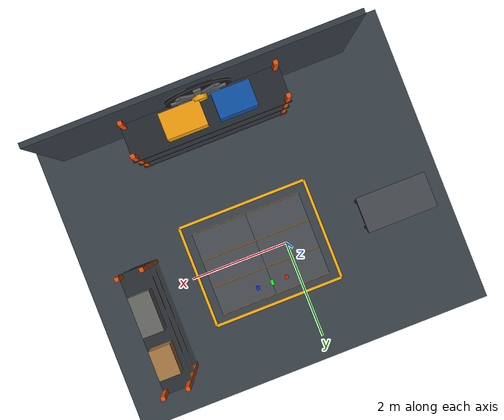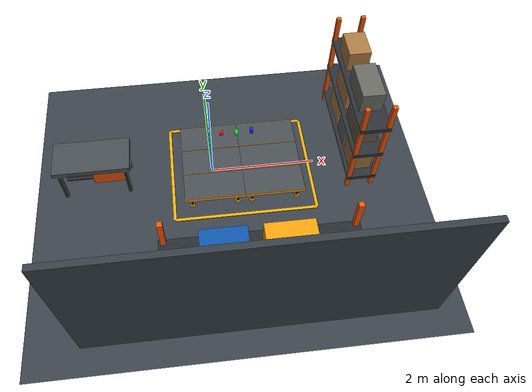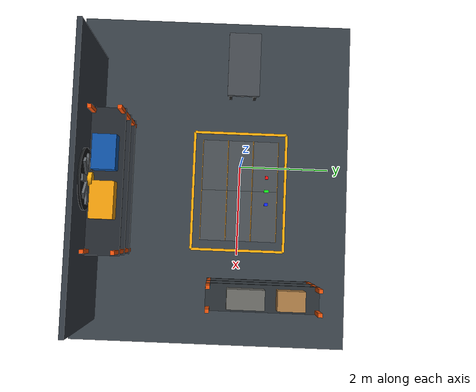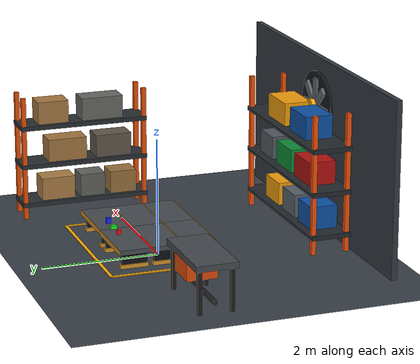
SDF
<sdf version="1.9">
 <world name="pick_and_place_world">
  <gravity>0 0 -9.8</gravity>
  <magnetic_field>6e-06 2.3e-05 -4.2e-05</magnetic_field>
  <atmosphere type="adiabatic"/>
  <physics type="ode">
   <max_step_size>0.001</max_step_size>
   <real_time_factor>1</real_time_factor>
   <real_time_update_rate>1000</real_time_update_rate>
  </physics>
  <scene>
   <ambient>0.45 0.45 0.45 1</ambient>
   <background>0.12 0.15 0.18 1</background>
   <shadows>true</shadows>
  </scene>
  <model name="red_box">
   <pose>0.25 0.6 0.39 0 0 0</pose>
   <static>false</static>
   <link name="red_link">
    <inertial>
     <mass>0.10</mass>
     <inertia><ixx>0.000089</ixx><iyy>0.000089</iyy><izz>0.000070</izz></inertia>
    </inertial>
    <collision name="red_collision"><geometry><box><size>0.065 0.065 0.08</size></box></geometry></collision>
    <visual name="red_visual">
     <geometry><box><size>0.065 0.065 0.08</size></box></geometry>
     <material><ambient>1 0.05 0.05 1</ambient><diffuse>1 0.05 0.05 1</diffuse></material>
    </visual>
   </link>
  </model>
  <model name="green_box">
   <pose>0.55 0.6 0.38 0 0 1.5708</pose>
   <static>false</static>
   <link name="green_link">
    <inertial>
     <mass>0.12</mass>
     <inertia><ixx>0.00007</ixx><iyy>0.00012</iyy><izz>0.00013</izz></inertia>
    </inertial>
    <collision name="green_collision"><geometry><box><size>0.10 0.06 0.06</size></box></geometry></collision>
    <visual name="green_visual">
     <geometry><box><size>0.10 0.06 0.06</size></box></geometry>
     <material><ambient>0.05 1 0.10 1</ambient><diffuse>0.05 1 0.10 1</diffuse></material>
    </visual>
   </link>
  </model>
  <model name="blue_box">
   <pose>0.85 0.6 0.40 0 0 0</pose>
   <static>false</static>
   <link name="blue_link">
    <inertial>
     <mass>0.08</mass>
     <inertia><ixx>0.00011</ixx><iyy>0.00009</iyy><izz>0.00007</izz></inertia>
    </inertial>
    <collision name="blue_collision"><geometry><box><size>0.06 0.08 0.10</size></box></geometry></collision>
    <visual name="blue_visual">
     <geometry><box><size>0.06 0.08 0.10</size></box></geometry>
     <material><ambient>0.05 0.15 1 1</ambient><diffuse>0.05 0.15 1 1</diffuse></material>
    </visual>
   </link>
  </model>
  <include><uri>model://fancy_table</uri><name>fancy_table_5</name><pose>0 -0.56 0 0 0 0</pose></include>
  <include><uri>model://fancy_table</uri><name>fancy_table_6</name><pose>1.12 -0.56 0 0 0 0</pose></include>
  <include><uri>model://fancy_table</uri><name>fancy_table_1</name></include>
  <include><uri>model://fancy_table</uri><name>fancy_table_2</name><pose>1.12 0 0 0 0 0</pose></include>
  <include><uri>model://fancy_table</uri><name>fancy_table_3</name><pose>1.12 0.56 0 0 0 0</pose></include>
  <include><uri>model://fancy_table</uri><name>fancy_table_4</name><pose>0 0.56 0 0 0 0</pose></include>
  <model name="ground_plane">
   <static>true</static>
   <link name="link">
    <collision name="collision">
     <geometry><plane><normal>0 0 1</normal><size>1 1</size></plane></geometry>
    </collision>
    <visual name="visual">
     <geometry><plane><normal>0 0 1</normal><size>100 100</size></plane></geometry>
     <material>
      <ambient>0.16 0.18 0.20 1</ambient>
      <diffuse>0.22 0.25 0.28 1</diffuse>
      <specular>0.08 0.08 0.08 1</specular>
     </material>
    </visual>
    <inertial>
     <mass>1</mass>
     <inertia><ixx>1</ixx><ixy>0</ixy><ixz>0</ixz><iyy>1</iyy><iyz>0</iyz><izz>1</izz></inertia>
    </inertial>
   </link>
  </model>
  <model name="industrial_back_wall">
   <static>true</static>
   <pose>0.56 -3.20 1.50 0 0 0</pose>
   <link name="wall_link">
    <visual name="wall_visual">
     <geometry><box><size>6.0 0.10 3.0</size></box></geometry>
     <material>
      <ambient>0.11 0.13 0.15 1</ambient>
      <diffuse>0.20 0.23 0.26 1</diffuse>
      <specular>0.08 0.08 0.08 1</specular>
     </material>
    </visual>
   </link>
  </model>
  <model name="warehouse_storage_rack">
   <static>true</static>
   <pose>0.56 -2.75 0 0 0 0</pose>
   <link name="rack_link">
    <visual name="post_front_left">
     <pose>-1.42 0.30 1.20 0 0 0</pose>
     <geometry><box><size>0.08 0.08 2.40</size></box></geometry>
     <material>
      <ambient>0.55 0.15 0.02 1</ambient>
      <diffuse>0.95 0.32 0.04 1</diffuse>
      <specular>0.25 0.20 0.10 1</specular>
     </material>
    </visual>
    <visual name="post_front_right">
     <pose>1.42 0.30 1.20 0 0 0</pose>
     <geometry><box><size>0.08 0.08 2.40</size></box></geometry>
     <material>
      <ambient>0.55 0.15 0.02 1</ambient>
      <diffuse>0.95 0.32 0.04 1</diffuse>
      <specular>0.25 0.20 0.10 1</specular>
     </material>
    </visual>
    <visual name="post_back_left">
     <pose>-1.42 -0.30 1.20 0 0 0</pose>
     <geometry><box><size>0.08 0.08 2.40</size></box></geometry>
     <material>
      <ambient>0.55 0.15 0.02 1</ambient>
      <diffuse>0.95 0.32 0.04 1</diffuse>
      <specular>0.25 0.20 0.10 1</specular>
     </material>
    </visual>
    <visual name="post_back_right">
     <pose>1.42 -0.30 1.20 0 0 0</pose>
     <geometry><box><size>0.08 0.08 2.40</size></box></geometry>
     <material>
      <ambient>0.55 0.15 0.02 1</ambient>
      <diffuse>0.95 0.32 0.04 1</diffuse>
      <specular>0.25 0.20 0.10 1</specular>
     </material>
    </visual>
    <visual name="bottom_shelf">
     <pose>0 0 0.30 0 0 0</pose>
     <geometry><box><size>3.0 0.70 0.08</size></box></geometry>
     <material>
      <ambient>0.06 0.07 0.08 1</ambient>
      <diffuse>0.14 0.16 0.18 1</diffuse>
      <specular>0.30 0.32 0.34 1</specular>
     </material>
    </visual>
    <visual name="middle_shelf">
     <pose>0 0 1.05 0 0 0</pose>
     <geometry><box><size>3.0 0.70 0.08</size></box></geometry>
     <material>
      <ambient>0.06 0.07 0.08 1</ambient>
      <diffuse>0.14 0.16 0.18 1</diffuse>
      <specular>0.30 0.32 0.34 1</specular>
     </material>
    </visual>
    <visual name="top_shelf">
     <pose>0 0 1.80 0 0 0</pose>
     <geometry><box><size>3.0 0.70 0.08</size></box></geometry>
     <material>
      <ambient>0.06 0.07 0.08 1</ambient>
      <diffuse>0.14 0.16 0.18 1</diffuse>
      <specular>0.30 0.32 0.34 1</specular>
     </material>
    </visual>
    <visual name="crate_blue_lower">
     <pose>-0.90 0 0.54 0 0 0</pose>
     <geometry><box><size>0.55 0.48 0.40</size></box></geometry>
     <material><ambient>0.03 0.14 0.30 1</ambient><diffuse>0.05 0.32 0.65 1</diffuse></material>
    </visual>
    <visual name="crate_grey_lower">
     <pose>-0.20 0 0.54 0 0 0</pose>
     <geometry><box><size>0.55 0.48 0.40</size></box></geometry>
     <material><ambient>0.18 0.20 0.22 1</ambient><diffuse>0.35 0.38 0.42 1</diffuse></material>
    </visual>
    <visual name="crate_yellow_lower">
     <pose>0.55 0 0.54 0 0 0</pose>
     <geometry><box><size>0.60 0.48 0.40</size></box></geometry>
     <material><ambient>0.48 0.30 0.02 1</ambient><diffuse>0.95 0.62 0.04 1</diffuse></material>
    </visual>
    <visual name="crate_red_middle">
     <pose>-0.75 0 1.29 0 0 0</pose>
     <geometry><box><size>0.65 0.48 0.40</size></box></geometry>
     <material><ambient>0.35 0.03 0.03 1</ambient><diffuse>0.70 0.07 0.06 1</diffuse></material>
    </visual>
    <visual name="crate_green_middle">
     <pose>0.05 0 1.29 0 0 0</pose>
     <geometry><box><size>0.65 0.48 0.40</size></box></geometry>
     <material><ambient>0.03 0.28 0.12 1</ambient><diffuse>0.05 0.55 0.22 1</diffuse></material>
    </visual>
    <visual name="crate_grey_middle">
     <pose>0.85 0 1.29 0 0 0</pose>
     <geometry><box><size>0.55 0.48 0.40</size></box></geometry>
     <material><ambient>0.16 0.18 0.20 1</ambient><diffuse>0.32 0.35 0.38 1</diffuse></material>
    </visual>
    <visual name="crate_blue_top">
     <pose>-0.55 0 2.04 0 0 0</pose>
     <geometry><box><size>0.70 0.48 0.40</size></box></geometry>
     <material><ambient>0.03 0.14 0.30 1</ambient><diffuse>0.05 0.32 0.65 1</diffuse></material>
    </visual>
    <visual name="crate_yellow_top">
     <pose>0.40 0 2.04 0 0 0</pose>
     <geometry><box><size>0.75 0.48 0.40</size></box></geometry>
     <material><ambient>0.48 0.30 0.02 1</ambient><diffuse>0.95 0.62 0.04 1</diffuse></material>
    </visual>
   </link>
  </model>
  <model name="industrial_safety_boundary">
   <static>true</static>
   <link name="safety_line_link">
    <visual name="front_line">
     <pose>0.56 1.05 0.008 0 0 0</pose>
     <geometry><box><size>2.68 0.055 0.016</size></box></geometry>
     <material><ambient>0.60 0.38 0.01 1</ambient><diffuse>1.00 0.68 0.02 1</diffuse></material>
    </visual>
    <visual name="back_line">
     <pose>0.56 -1.05 0.008 0 0 0</pose>
     <geometry><box><size>2.68 0.055 0.016</size></box></geometry>
     <material><ambient>0.60 0.38 0.01 1</ambient><diffuse>1.00 0.68 0.02 1</diffuse></material>
    </visual>
    <visual name="left_line">
     <pose>-0.78 0 0.008 0 0 0</pose>
     <geometry><box><size>0.055 2.10 0.016</size></box></geometry>
     <material><ambient>0.60 0.38 0.01 1</ambient><diffuse>1.00 0.68 0.02 1</diffuse></material>
    </visual>
    <visual name="right_line">
     <pose>1.90 0 0.008 0 0 0</pose>
     <geometry><box><size>0.055 2.10 0.016</size></box></geometry>
     <material><ambient>0.60 0.38 0.01 1</ambient><diffuse>1.00 0.68 0.02 1</diffuse></material>
    </visual>
   </link>
  </model>
  <model name="side_storage_shelf">
   <static>true</static>
   <pose>2.80 0.50 0 0 0 1.5708</pose>
   <link name="shelf_link">
    <visual name="post_1">
     <pose>-1.10 0.23 1.10 0 0 0</pose>
     <geometry><box><size>0.08 0.08 2.20</size></box></geometry>
     <material>
      <ambient>0.50 0.16 0.02 1</ambient>
      <diffuse>0.90 0.32 0.04 1</diffuse>
      <specular>0.20 0.18 0.10 1</specular>
     </material>
    </visual>
    <visual name="post_2">
     <pose>1.10 0.23 1.10 0 0 0</pose>
     <geometry><box><size>0.08 0.08 2.20</size></box></geometry>
     <material>
      <ambient>0.50 0.16 0.02 1</ambient>
      <diffuse>0.90 0.32 0.04 1</diffuse>
      <specular>0.20 0.18 0.10 1</specular>
     </material>
    </visual>
    <visual name="post_3">
     <pose>-1.10 -0.23 1.10 0 0 0</pose>
     <geometry><box><size>0.08 0.08 2.20</size></box></geometry>
     <material>
      <ambient>0.50 0.16 0.02 1</ambient>
      <diffuse>0.90 0.32 0.04 1</diffuse>
      <specular>0.20 0.18 0.10 1</specular>
     </material>
    </visual>
    <visual name="post_4">
     <pose>1.10 -0.23 1.10 0 0 0</pose>
     <geometry><box><size>0.08 0.08 2.20</size></box></geometry>
     <material>
      <ambient>0.50 0.16 0.02 1</ambient>
      <diffuse>0.90 0.32 0.04 1</diffuse>
      <specular>0.20 0.18 0.10 1</specular>
     </material>
    </visual>
    <visual name="shelf_bottom">
     <pose>0 0 0.25 0 0 0</pose>
     <geometry><box><size>2.30 0.55 0.08</size></box></geometry>
     <material>
      <ambient>0.07 0.08 0.09 1</ambient>
      <diffuse>0.16 0.18 0.20 1</diffuse>
      <specular>0.25 0.27 0.29 1</specular>
     </material>
    </visual>
    <visual name="shelf_middle">
     <pose>0 0 0.95 0 0 0</pose>
     <geometry><box><size>2.30 0.55 0.08</size></box></geometry>
     <material>
      <ambient>0.07 0.08 0.09 1</ambient>
      <diffuse>0.16 0.18 0.20 1</diffuse>
      <specular>0.25 0.27 0.29 1</specular>
     </material>
    </visual>
    <visual name="shelf_top">
     <pose>0 0 1.65 0 0 0</pose>
     <geometry><box><size>2.30 0.55 0.08</size></box></geometry>
     <material>
      <ambient>0.07 0.08 0.09 1</ambient>
      <diffuse>0.16 0.18 0.20 1</diffuse>
      <specular>0.25 0.27 0.29 1</specular>
     </material>
    </visual>
    <visual name="carton_1">
     <pose>-0.72 0 0.49 0 0 0</pose>
     <geometry><box><size>0.48 0.40 0.40</size></box></geometry>
     <material><ambient>0.30 0.21 0.11 1</ambient><diffuse>0.60 0.44 0.24 1</diffuse></material>
    </visual>
    <visual name="carton_2">
     <pose>-0.15 0 0.49 0 0 0</pose>
     <geometry><box><size>0.45 0.40 0.40</size></box></geometry>
     <material><ambient>0.19 0.19 0.18 1</ambient><diffuse>0.38 0.38 0.36 1</diffuse></material>
    </visual>
    <visual name="carton_3">
     <pose>0.48 0 0.49 0 0 0</pose>
     <geometry><box><size>0.60 0.40 0.40</size></box></geometry>
     <material><ambient>0.34 0.25 0.13 1</ambient><diffuse>0.67 0.49 0.27 1</diffuse></material>
    </visual>
    <visual name="carton_4">
     <pose>-0.55 0 1.19 0 0 0</pose>
     <geometry><box><size>0.65 0.40 0.40</size></box></geometry>
     <material><ambient>0.18 0.17 0.15 1</ambient><diffuse>0.37 0.34 0.29 1</diffuse></material>
    </visual>
    <visual name="carton_5">
     <pose>0.30 0 1.19 0 0 0</pose>
     <geometry><box><size>0.70 0.40 0.40</size></box></geometry>
     <material><ambient>0.32 0.23 0.12 1</ambient><diffuse>0.64 0.46 0.25 1</diffuse></material>
    </visual>
    <visual name="carton_6">
     <pose>-0.35 0 1.89 0 0 0</pose>
     <geometry><box><size>0.75 0.40 0.40</size></box></geometry>
     <material><ambient>0.20 0.20 0.19 1</ambient><diffuse>0.40 0.40 0.38 1</diffuse></material>
    </visual>
    <visual name="carton_7">
     <pose>0.55 0 1.89 0 0 0</pose>
     <geometry><box><size>0.55 0.40 0.40</size></box></geometry>
     <material><ambient>0.33 0.24 0.13 1</ambient><diffuse>0.65 0.47 0.26 1</diffuse></material>
    </visual>
   </link>
  </model>
  <model name="industrial_side_workbench">
   <static>true</static>
   <pose>-2.20 0 0 0 0 0</pose>
   <link name="workbench_link">
    <visual name="workbench_top">
     <pose>0 0 0.78 0 0 0</pose>
     <geometry><box><size>1.40 0.70 0.10</size></box></geometry>
     <material>
      <ambient>0.12 0.13 0.14 1</ambient>
      <diffuse>0.27 0.29 0.31 1</diffuse>
      <specular>0.30 0.30 0.30 1</specular>
     </material>
    </visual>
    <visual name="workbench_leg_1">
     <pose>-0.60 -0.27 0.375 0 0 0</pose>
     <geometry><box><size>0.07 0.07 0.75</size></box></geometry>
     <material><ambient>0.05 0.05 0.05 1</ambient><diffuse>0.12 0.12 0.12 1</diffuse></material>
    </visual>
    <visual name="workbench_leg_2">
     <pose>-0.60 0.27 0.375 0 0 0</pose>
     <geometry><box><size>0.07 0.07 0.75</size></box></geometry>
     <material><ambient>0.05 0.05 0.05 1</ambient><diffuse>0.12 0.12 0.12 1</diffuse></material>
    </visual>
    <visual name="workbench_leg_3">
     <pose>0.60 -0.27 0.375 0 0 0</pose>
     <geometry><box><size>0.07 0.07 0.75</size></box></geometry>
     <material><ambient>0.05 0.05 0.05 1</ambient><diffuse>0.12 0.12 0.12 1</diffuse></material>
    </visual>
    <visual name="workbench_leg_4">
     <pose>0.60 0.27 0.375 0 0 0</pose>
     <geometry><box><size>0.07 0.07 0.75</size></box></geometry>
     <material><ambient>0.05 0.05 0.05 1</ambient><diffuse>0.12 0.12 0.12 1</diffuse></material>
    </visual>
    <visual name="tool_cabinet">
     <pose>0.30 0 0.54 0 0 0</pose>
     <geometry><box><size>0.62 0.52 0.42</size></box></geometry>
     <material>
      <ambient>0.48 0.15 0.02 1</ambient>
      <diffuse>0.88 0.30 0.04 1</diffuse>
      <specular>0.20 0.16 0.08 1</specular>
     </material>
    </visual>
    <visual name="lower_support">
     <pose>0 0 0.16 0 0 0</pose>
     <geometry><box><size>1.18 0.06 0.06</size></box></geometry>
     <material><ambient>0.05 0.05 0.05 1</ambient><diffuse>0.12 0.12 0.12 1</diffuse></material>
    </visual>
   </link>
  </model>
  <model name="industrial_wall_fan">
   <static>true</static>
   <pose>0.56 -3.10 2.15 0 0 0</pose>
   <link name="fan_link">
    <visual name="fan_housing">
     <pose>0 0 0 1.5708 0 0</pose>
     <geometry><cylinder><radius>0.62</radius><length>0.045</length></cylinder></geometry>
     <material>
      <ambient>0.035 0.04 0.045 1</ambient>
      <diffuse>0.08 0.09 0.10 1</diffuse>
      <specular>0.25 0.25 0.25 1</specular>
     </material>
    </visual>
    <visual name="blade_horizontal">
     <pose>0 0.04 0 0 0 0</pose>
     <geometry><box><size>1.00 0.05 0.13</size></box></geometry>
     <material>
      <ambient>0.18 0.19 0.20 1</ambient>
      <diffuse>0.38 0.40 0.42 1</diffuse>
      <specular>0.30 0.30 0.30 1</specular>
     </material>
    </visual>
    <visual name="blade_vertical">
     <pose>0 0.04 0 0 0 0</pose>
     <geometry><box><size>0.13 0.05 1.00</size></box></geometry>
     <material>
      <ambient>0.18 0.19 0.20 1</ambient>
      <diffuse>0.38 0.40 0.42 1</diffuse>
      <specular>0.30 0.30 0.30 1</specular>
     </material>
    </visual>
    <visual name="blade_diagonal_1">
     <pose>0 0.05 0 0 0.7854 0</pose>
     <geometry><box><size>1.00 0.05 0.13</size></box></geometry>
     <material>
      <ambient>0.18 0.19 0.20 1</ambient>
      <diffuse>0.38 0.40 0.42 1</diffuse>
      <specular>0.30 0.30 0.30 1</specular>
     </material>
    </visual>
    <visual name="blade_diagonal_2">
     <pose>0 0.05 0 0 -0.7854 0</pose>
     <geometry><box><size>1.00 0.05 0.13</size></box></geometry>
     <material>
      <ambient>0.18 0.19 0.20 1</ambient>
      <diffuse>0.38 0.40 0.42 1</diffuse>
      <specular>0.30 0.30 0.30 1</specular>
     </material>
    </visual>
    <visual name="fan_hub">
     <pose>0 0.09 0 1.5708 0 0</pose>
     <geometry><cylinder><radius>0.14</radius><length>0.12</length></cylinder></geometry>
     <material>
      <ambient>0.55 0.36 0.01 1</ambient>
      <diffuse>0.95 0.65 0.03 1</diffuse>
      <specular>0.30 0.25 0.10 1</specular>
     </material>
    </visual>
   </link>
  </model>
  <light name="sun" type="directional">
   <pose>0 0 10 0 0 0</pose>
   <intensity>1</intensity>
   <direction>-0.5 0.1 -0.9</direction>
   <diffuse>0.8 0.8 0.8 1</diffuse>
   <specular>0.2 0.2 0.2 1</specular>
   <attenuation>
    <range>1000</range>
    <linear>0.01</linear>
    <constant>0.9</constant>
    <quadratic>0.001</quadratic>
   </attenuation>
   <spot><inner_angle>0</inner_angle><outer_angle>0</outer_angle><falloff>0</falloff></spot>
  </light>
 </world>
</sdf>

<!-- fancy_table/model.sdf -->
<sdf version="1.9">
  <model name="fancy_table">
    <static>true</static>
    <link name="table">
      <!-- Simple collision shapes keep the table stable and inexpensive to simulate. -->
      <collision name="top_collision">
        <!-- Top surface is z=0.35, matching panda_link0 in arm.xacro. -->
        <pose>0 0 0.315 0 0 0</pose>
        <geometry><box><size>1.12 0.56 0.07</size></box></geometry>
      </collision>
      <collision name="left_leg_collision">
        <pose>-0.43 0 0.1525 0 0 0</pose>
        <geometry><box><size>0.06 0.44 0.305</size></box></geometry>
      </collision>
      <collision name="right_leg_collision">
        <pose>0.43 0 0.1525 0 0 0</pose>
        <geometry><box><size>0.06 0.44 0.305</size></box></geometry>
      </collision>

      <!-- Warm walnut top. -->
      <visual name="walnut_top">
        <pose>0 0 0.315 0 0 0</pose>
        <geometry><box><size>1.12 0.56 0.07</size></box></geometry>
        <material>
          <ambient>0.12 0.13 0.14 1</ambient>
          <diffuse>0.28 0.30 0.32 1</diffuse>
          <specular>0.18 0.18 0.18 1</specular>
        </material>
      </visual>

      <!-- Thin brass edge bands give the top a more finished appearance. -->
      <visual name="front_brass_trim">
        <pose>0 -0.283 0.315 0 0 0</pose>
        <geometry><box><size>1.13 0.012 0.075</size></box></geometry>
        <material>
          <ambient>0.55 0.32 0.07 1</ambient>
          <diffuse>0.85 0.58 0.16 1</diffuse>
          <specular>0.95 0.80 0.35 1</specular>
        </material>
      </visual>
      <visual name="back_brass_trim">
        <pose>0 0.283 0.315 0 0 0</pose>
        <geometry><box><size>1.13 0.012 0.075</size></box></geometry>
        <material>
          <ambient>0.55 0.32 0.07 1</ambient>
          <diffuse>0.85 0.58 0.16 1</diffuse>
          <specular>0.95 0.80 0.35 1</specular>
        </material>
      </visual>

      <!-- Matte-black steel pedestal legs and lower crossbar. -->
      <visual name="left_leg">
        <pose>-0.43 0 0.1525 0 0 0</pose>
        <geometry><box><size>0.06 0.44 0.305</size></box></geometry>
        <material>
          <ambient>0.025 0.03 0.035 1</ambient>
          <diffuse>0.055 0.065 0.075 1</diffuse>
          <specular>0.35 0.38 0.40 1</specular>
        </material>
      </visual>
      <visual name="right_leg">
        <pose>0.43 0 0.1525 0 0 0</pose>
        <geometry><box><size>0.06 0.44 0.305</size></box></geometry>
        <material>
          <ambient>0.025 0.03 0.035 1</ambient>
          <diffuse>0.055 0.065 0.075 1</diffuse>
          <specular>0.35 0.38 0.40 1</specular>
        </material>
      </visual>
      <visual name="lower_crossbar">
        <pose>0 0 0.10 0 0 0</pose>
        <geometry><box><size>0.86 0.045 0.045</size></box></geometry>
        <material>
          <ambient>0.025 0.03 0.035 1</ambient>
          <diffuse>0.055 0.065 0.075 1</diffuse>
          <specular>0.35 0.38 0.40 1</specular>
        </material>
      </visual>

      <!-- Brass feet echo the trim around the tabletop. -->
      <visual name="left_foot">
        <pose>-0.43 0 0.035 0 0 0</pose>
        <geometry><box><size>0.09 0.48 0.07</size></box></geometry>
        <material>
          <ambient>0.55 0.32 0.07 1</ambient>
          <diffuse>0.85 0.58 0.16 1</diffuse>
          <specular>0.95 0.80 0.35 1</specular>
        </material>
      </visual>
      <visual name="right_foot">
        <pose>0.43 0 0.035 0 0 0</pose>
        <geometry><box><size>0.09 0.48 0.07</size></box></geometry>
        <material>
          <ambient>0.55 0.32 0.07 1</ambient>
          <diffuse>0.85 0.58 0.16 1</diffuse>
          <specular>0.95 0.80 0.35 1</specular>
        </material>
      </visual>
    </link>
  </model>
</sdf>
